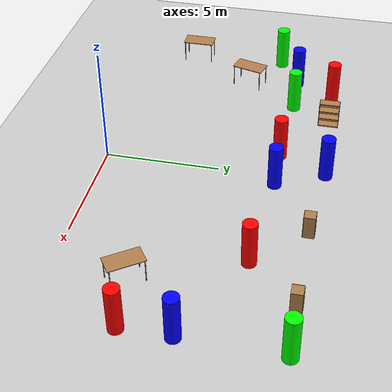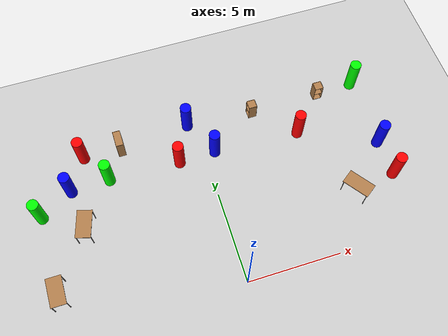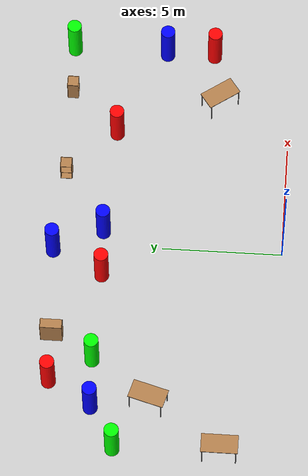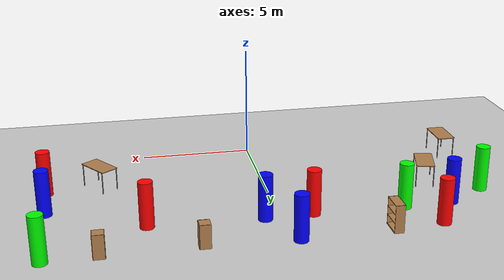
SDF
<sdf version="1.6">
 <world name="default">
  <model name="ground_plane">
   <static>1</static>
   <link name="link">
    <collision name="collision">
     <geometry><plane><normal>0 0 1</normal><size>100 100</size></plane></geometry>
     <surface>
      <contact><collide_bitmask>65535</collide_bitmask></contact>
      <friction><ode><mu>100</mu><mu2>50</mu2></ode></friction>
     </surface>
    </collision>
    <visual name="visual">
     <cast_shadows>0</cast_shadows>
     <geometry><plane><normal>0 0 1</normal><size>100 100</size></plane></geometry>
     <material>
      <script><uri>file://media/materials/scripts/gazebo.material</uri><name>Gazebo/Grey</name></script>
     </material>
    </visual>
   </link>
  </model>
  <model name="bookshelf4">
   <static>1</static>
   <link name="link">
    <inertial><mass>1</mass></inertial>
    <collision name="back">
     <pose>0 0.005 0.6 0 -0 0</pose>
     <geometry><box><size>0.9 0.01 1.2</size></box></geometry>
    </collision>
    <visual name="visual1">
     <pose>0 0.005 0.6 0 -0 0</pose>
     <geometry><box><size>0.9 0.01 1.2</size></box></geometry>
     <material>
      <script><uri>file://media/materials/scripts/gazebo.material</uri><name>Gazebo/Wood</name></script>
     </material>
    </visual>
    <collision name="left_side">
     <pose>0.45 -0.195 0.6 0 -0 0</pose>
     <geometry><box><size>0.02 0.4 1.2</size></box></geometry>
    </collision>
    <visual name="visual2">
     <pose>0.45 -0.195 0.6 0 -0 0</pose>
     <geometry><box><size>0.02 0.4 1.2</size></box></geometry>
     <material>
      <script><uri>file://media/materials/scripts/gazebo.material</uri><name>Gazebo/Wood</name></script>
     </material>
    </visual>
    <collision name="right_side">
     <pose>-0.45 -0.195 0.6 0 -0 0</pose>
     <geometry><box><size>0.02 0.4 1.2</size></box></geometry>
    </collision>
    <visual name="visual3">
     <pose>-0.45 -0.195 0.6 0 -0 0</pose>
     <geometry><box><size>0.02 0.4 1.2</size></box></geometry>
     <material>
      <script><uri>file://media/materials/scripts/gazebo.material</uri><name>Gazebo/Wood</name></script>
     </material>
    </visual>
    <collision name="bottom">
     <pose>0 -0.195 0.03 0 -0 0</pose>
     <geometry><box><size>0.88 0.4 0.06</size></box></geometry>
    </collision>
    <visual name="visual4">
     <pose>0 -0.195 0.03 0 -0 0</pose>
     <geometry><box><size>0.88 0.4 0.06</size></box></geometry>
     <material>
      <script><uri>file://media/materials/scripts/gazebo.material</uri><name>Gazebo/Wood</name></script>
     </material>
    </visual>
    <collision name="top">
     <pose>0 -0.195 1.19 0 -0 0</pose>
     <geometry><box><size>0.88 0.4 0.02</size></box></geometry>
    </collision>
    <visual name="visual5">
     <pose>0 -0.195 1.19 0 -0 0</pose>
     <geometry><box><size>0.88 0.4 0.02</size></box></geometry>
     <material>
      <script><uri>file://media/materials/scripts/gazebo.material</uri><name>Gazebo/Wood</name></script>
     </material>
    </visual>
    <collision name="low_shelf">
     <pose>0 -0.195 0.43 0 -0 0</pose>
     <geometry><box><size>0.88 0.4 0.02</size></box></geometry>
    </collision>
    <visual name="visual6">
     <pose>0 -0.195 0.43 0 -0 0</pose>
     <geometry><box><size>0.88 0.4 0.02</size></box></geometry>
     <material>
      <script><uri>file://media/materials/scripts/gazebo.material</uri><name>Gazebo/Wood</name></script>
     </material>
    </visual>
    <collision name="high_shelf">
     <pose>0 -0.195 0.8 0 -0 0</pose>
     <geometry><box><size>0.88 0.4 0.02</size></box></geometry>
    </collision>
    <visual name="visual7">
     <pose>0 -0.195 0.8 0 -0 0</pose>
     <geometry><box><size>0.88 0.4 0.02</size></box></geometry>
     <material>
      <script><uri>file://media/materials/scripts/gazebo.material</uri><name>Gazebo/Wood</name></script>
     </material>
    </visual>
   </link>
   <pose>-4.51158 9.29121 0 0 -0 1.5708</pose>
  </model>
  <model name="cabinet0">
   <static>1</static>
   <link name="cabinet_bottom_plate">
    <inertial>
     <pose>0 0 -1 0 -0 0</pose>
     <inertia><ixx>2.05</ixx><ixy>0</ixy><ixz>0</ixz><iyy>2.05</iyy><iyz>0</iyz><izz>2.05</izz></inertia>
     <mass>25</mass>
    </inertial>
    <collision name="cabinet_bottom_plate_geom">
     <pose>0 0 0.01 0 -0 0</pose>
     <geometry><box><size>0.45 0.45 0.02</size></box></geometry>
    </collision>
    <visual name="cabinet_bottom_plate_geom_visual">
     <pose>0 0 0.01 0 -0 0</pose>
     <geometry><box><size>0.45 0.45 0.02</size></box></geometry>
     <material>
      <script><uri>file://media/materials/scripts/gazebo.material</uri><name>Gazebo/Wood</name></script>
     </material>
    </visual>
    <collision name="cabinet_bottom_plate_geom_cabinet_back_plate">
     <pose>0.235 0 0.51 0 -0 0</pose>
     <geometry><box><size>0.02 0.45 1.02</size></box></geometry>
    </collision>
    <visual name="cabinet_bottom_plate_geom_cabinet_back_plate_visual">
     <pose>0.235 0 0.51 0 -0 0</pose>
     <geometry><box><size>0.02 0.45 1.02</size></box></geometry>
     <material>
      <script><uri>file://media/materials/scripts/gazebo.material</uri><name>Gazebo/Wood</name></script>
     </material>
    </visual>
    <collision name="cabinet_bottom_plate_geom_cabinet_left_plate">
     <pose>0 0.235 0.51 0 -0 0</pose>
     <geometry><box><size>0.45 0.02 1.02</size></box></geometry>
    </collision>
    <visual name="cabinet_bottom_plate_geom_cabinet_left_plate_visual">
     <pose>0 0.235 0.51 0 -0 0</pose>
     <geometry><box><size>0.45 0.02 1.02</size></box></geometry>
     <material>
      <script><uri>file://media/materials/scripts/gazebo.material</uri><name>Gazebo/Wood</name></script>
     </material>
    </visual>
    <collision name="cabinet_bottom_plate_geom_cabinet_middle_plate">
     <pose>0 0 0.51 0 -0 0</pose>
     <geometry><box><size>0.45 0.45 0.02</size></box></geometry>
    </collision>
    <visual name="cabinet_bottom_plate_geom_cabinet_middle_plate_visual">
     <pose>0 0 0.51 0 -0 0</pose>
     <geometry><box><size>0.45 0.45 0.02</size></box></geometry>
     <material>
      <script><uri>file://media/materials/scripts/gazebo.material</uri><name>Gazebo/Wood</name></script>
     </material>
    </visual>
    <collision name="cabinet_bottom_plate_geom_cabinet_right_plate">
     <pose>0 -0.235 0.51 0 -0 0</pose>
     <geometry><box><size>0.45 0.02 1.02</size></box></geometry>
    </collision>
    <visual name="cabinet_bottom_plate_geom_cabinet_right_plate_visual">
     <pose>0 -0.235 0.51 0 -0 0</pose>
     <geometry><box><size>0.45 0.02 1.02</size></box></geometry>
     <material>
      <script><uri>file://media/materials/scripts/gazebo.material</uri><name>Gazebo/Wood</name></script>
     </material>
    </visual>
    <collision name="cabinet_bottom_plate_geom_cabinet_top_plate">
     <pose>0 0 1.01 0 -0 0</pose>
     <geometry><box><size>0.45 0.45 0.02</size></box></geometry>
    </collision>
    <visual name="cabinet_bottom_plate_geom_cabinet_top_plate_visual">
     <pose>0 0 1.01 0 -0 0</pose>
     <geometry><box><size>0.45 0.45 0.02</size></box></geometry>
     <material>
      <script><uri>file://media/materials/scripts/gazebo.material</uri><name>Gazebo/Wood</name></script>
     </material>
    </visual>
   </link>
   <pose>3.30482 9.28063 0 0 -0 0</pose>
  </model>
  <model name="cabinet4">
   <static>1</static>
   <link name="cabinet_bottom_plate">
    <inertial>
     <pose>0 0 -1 0 -0 0</pose>
     <inertia><ixx>2.05</ixx><ixy>0</ixy><ixz>0</ixz><iyy>2.05</iyy><iyz>0</iyz><izz>2.05</izz></inertia>
     <mass>25</mass>
    </inertial>
    <collision name="cabinet_bottom_plate_geom">
     <pose>0 0 0.01 0 -0 0</pose>
     <geometry><box><size>0.45 0.45 0.02</size></box></geometry>
    </collision>
    <visual name="cabinet_bottom_plate_geom_visual">
     <pose>0 0 0.01 0 -0 0</pose>
     <geometry><box><size>0.45 0.45 0.02</size></box></geometry>
     <material>
      <script><uri>file://media/materials/scripts/gazebo.material</uri><name>Gazebo/Wood</name></script>
     </material>
    </visual>
    <collision name="cabinet_bottom_plate_geom_cabinet_back_plate">
     <pose>0.235 0 0.51 0 -0 0</pose>
     <geometry><box><size>0.02 0.45 1.02</size></box></geometry>
    </collision>
    <visual name="cabinet_bottom_plate_geom_cabinet_back_plate_visual">
     <pose>0.235 0 0.51 0 -0 0</pose>
     <geometry><box><size>0.02 0.45 1.02</size></box></geometry>
     <material>
      <script><uri>file://media/materials/scripts/gazebo.material</uri><name>Gazebo/Wood</name></script>
     </material>
    </visual>
    <collision name="cabinet_bottom_plate_geom_cabinet_left_plate">
     <pose>0 0.235 0.51 0 -0 0</pose>
     <geometry><box><size>0.45 0.02 1.02</size></box></geometry>
    </collision>
    <visual name="cabinet_bottom_plate_geom_cabinet_left_plate_visual">
     <pose>0 0.235 0.51 0 -0 0</pose>
     <geometry><box><size>0.45 0.02 1.02</size></box></geometry>
     <material>
      <script><uri>file://media/materials/scripts/gazebo.material</uri><name>Gazebo/Wood</name></script>
     </material>
    </visual>
    <collision name="cabinet_bottom_plate_geom_cabinet_middle_plate">
     <pose>0 0 0.51 0 -0 0</pose>
     <geometry><box><size>0.45 0.45 0.02</size></box></geometry>
    </collision>
    <visual name="cabinet_bottom_plate_geom_cabinet_middle_plate_visual">
     <pose>0 0 0.51 0 -0 0</pose>
     <geometry><box><size>0.45 0.45 0.02</size></box></geometry>
     <material>
      <script><uri>file://media/materials/scripts/gazebo.material</uri><name>Gazebo/Wood</name></script>
     </material>
    </visual>
    <collision name="cabinet_bottom_plate_geom_cabinet_right_plate">
     <pose>0 -0.235 0.51 0 -0 0</pose>
     <geometry><box><size>0.45 0.02 1.02</size></box></geometry>
    </collision>
    <visual name="cabinet_bottom_plate_geom_cabinet_right_plate_visual">
     <pose>0 -0.235 0.51 0 -0 0</pose>
     <geometry><box><size>0.45 0.02 1.02</size></box></geometry>
     <material>
      <script><uri>file://media/materials/scripts/gazebo.material</uri><name>Gazebo/Wood</name></script>
     </material>
    </visual>
    <collision name="cabinet_bottom_plate_geom_cabinet_top_plate">
     <pose>0 0 1.01 0 -0 0</pose>
     <geometry><box><size>0.45 0.45 0.02</size></box></geometry>
    </collision>
    <visual name="cabinet_bottom_plate_geom_cabinet_top_plate_visual">
     <pose>0 0 1.01 0 -0 0</pose>
     <geometry><box><size>0.45 0.45 0.02</size></box></geometry>
     <material>
      <script><uri>file://media/materials/scripts/gazebo.material</uri><name>Gazebo/Wood</name></script>
     </material>
    </visual>
   </link>
   <pose>7.28077 9.29854 0 0 -0 1.5708</pose>
  </model>
  <model name="table1">
   <static>1</static>
   <link name="link">
    <collision name="surface">
     <pose>0 0 1 0 -0 0</pose>
     <geometry><box><size>1.5 0.8 0.03</size></box></geometry>
     <surface><friction><ode><mu>0.6</mu><mu2>0.6</mu2></ode></friction></surface>
    </collision>
    <visual name="visual1">
     <pose>0 0 1 0 -0 0</pose>
     <geometry><box><size>1.5 0.8 0.03</size></box></geometry>
     <material>
      <script><uri>file://media/materials/scripts/gazebo.material</uri><name>Gazebo/Wood</name></script>
     </material>
    </visual>
    <collision name="front_left_leg">
     <pose>0.68 0.38 0.5 0 -0 0</pose>
     <geometry><cylinder><radius>0.02</radius><length>1</length></cylinder></geometry>
    </collision>
    <visual name="front_left_leg">
     <pose>0.68 0.38 0.5 0 -0 0</pose>
     <geometry><cylinder><radius>0.02</radius><length>1</length></cylinder></geometry>
     <material>
      <script><uri>file://media/materials/scripts/gazebo.material</uri><name>Gazebo/Grey</name></script>
     </material>
    </visual>
    <collision name="front_right_leg">
     <pose>0.68 -0.38 0.5 0 -0 0</pose>
     <geometry><cylinder><radius>0.02</radius><length>1</length></cylinder></geometry>
    </collision>
    <visual name="front_right_leg">
     <pose>0.68 -0.38 0.5 0 -0 0</pose>
     <geometry><cylinder><radius>0.02</radius><length>1</length></cylinder></geometry>
     <material>
      <script><uri>file://media/materials/scripts/gazebo.material</uri><name>Gazebo/Grey</name></script>
     </material>
    </visual>
    <collision name="back_right_leg">
     <pose>-0.68 -0.38 0.5 0 -0 0</pose>
     <geometry><cylinder><radius>0.02</radius><length>1</length></cylinder></geometry>
    </collision>
    <visual name="back_right_leg">
     <pose>-0.68 -0.38 0.5 0 -0 0</pose>
     <geometry><cylinder><radius>0.02</radius><length>1</length></cylinder></geometry>
     <material>
      <script><uri>file://media/materials/scripts/gazebo.material</uri><name>Gazebo/Grey</name></script>
     </material>
    </visual>
    <collision name="back_left_leg">
     <pose>-0.68 0.38 0.5 0 -0 0</pose>
     <geometry><cylinder><radius>0.02</radius><length>1</length></cylinder></geometry>
    </collision>
    <visual name="back_left_leg">
     <pose>-0.68 0.38 0.5 0 -0 0</pose>
     <geometry><cylinder><radius>0.02</radius><length>1</length></cylinder></geometry>
     <material>
      <script><uri>file://media/materials/scripts/gazebo.material</uri><name>Gazebo/Grey</name></script>
     </material>
    </visual>
   </link>
   <pose>-9.1077 2.12163 0 0 0 -1.5708</pose>
  </model>
  <model name="table2">
   <static>1</static>
   <link name="link">
    <collision name="surface">
     <pose>0 0 1 0 -0 0</pose>
     <geometry><box><size>1.5 0.8 0.03</size></box></geometry>
     <surface><friction><ode><mu>0.6</mu><mu2>0.6</mu2></ode></friction></surface>
    </collision>
    <visual name="visual1">
     <pose>0 0 1 0 -0 0</pose>
     <geometry><box><size>1.5 0.8 0.03</size></box></geometry>
     <material>
      <script><uri>file://media/materials/scripts/gazebo.material</uri><name>Gazebo/Wood</name></script>
     </material>
    </visual>
    <collision name="front_left_leg">
     <pose>0.68 0.38 0.5 0 -0 0</pose>
     <geometry><cylinder><radius>0.02</radius><length>1</length></cylinder></geometry>
    </collision>
    <visual name="front_left_leg">
     <pose>0.68 0.38 0.5 0 -0 0</pose>
     <geometry><cylinder><radius>0.02</radius><length>1</length></cylinder></geometry>
     <material>
      <script><uri>file://media/materials/scripts/gazebo.material</uri><name>Gazebo/Grey</name></script>
     </material>
    </visual>
    <collision name="front_right_leg">
     <pose>0.68 -0.38 0.5 0 -0 0</pose>
     <geometry><cylinder><radius>0.02</radius><length>1</length></cylinder></geometry>
    </collision>
    <visual name="front_right_leg">
     <pose>0.68 -0.38 0.5 0 -0 0</pose>
     <geometry><cylinder><radius>0.02</radius><length>1</length></cylinder></geometry>
     <material>
      <script><uri>file://media/materials/scripts/gazebo.material</uri><name>Gazebo/Grey</name></script>
     </material>
    </visual>
    <collision name="back_right_leg">
     <pose>-0.68 -0.38 0.5 0 -0 0</pose>
     <geometry><cylinder><radius>0.02</radius><length>1</length></cylinder></geometry>
    </collision>
    <visual name="back_right_leg">
     <pose>-0.68 -0.38 0.5 0 -0 0</pose>
     <geometry><cylinder><radius>0.02</radius><length>1</length></cylinder></geometry>
     <material>
      <script><uri>file://media/materials/scripts/gazebo.material</uri><name>Gazebo/Grey</name></script>
     </material>
    </visual>
    <collision name="back_left_leg">
     <pose>-0.68 0.38 0.5 0 -0 0</pose>
     <geometry><cylinder><radius>0.02</radius><length>1</length></cylinder></geometry>
    </collision>
    <visual name="back_left_leg">
     <pose>-0.68 0.38 0.5 0 -0 0</pose>
     <geometry><cylinder><radius>0.02</radius><length>1</length></cylinder></geometry>
     <material>
      <script><uri>file://media/materials/scripts/gazebo.material</uri><name>Gazebo/Grey</name></script>
     </material>
    </visual>
   </link>
   <pose>7.0955 2.98202 0 0 -0 2.19088</pose>
  </model>
  <model name="red0">
   <link name="link">
    <pose>-0.202221 0.506091 0 0 -0 0</pose>
    <inertial>
     <mass>1</mass>
     <inertia><ixx>0.145833</ixx><ixy>0</ixy><ixz>0</ixz><iyy>0.145833</iyy><iyz>0</iyz><izz>0.125</izz></inertia>
    </inertial>
    <visual name="visual">
     <geometry><cylinder><radius>0.3</radius><length>2</length></cylinder></geometry>
     <material>
      <script><name>Gazebo/Grey</name><uri>file://media/materials/scripts/gazebo.material</uri></script>
      <ambient>1 0 0 1</ambient>
      <diffuse>0.7 0.7 0.7 1</diffuse>
      <specular>0.01 0.01 0.01 1</specular>
      <emissive>0 0 0 1</emissive>
      <shader type="vertex"><normal_map>__default__</normal_map></shader>
     </material>
    </visual>
    <collision name="collision">
     <geometry><cylinder><radius>0.3</radius><length>2</length></cylinder></geometry>
     <surface>
      <friction>
       <ode><mu>1</mu><mu2>1</mu2><fdir1>0 0 0</fdir1><slip1>0</slip1><slip2>0</slip2></ode>
       <torsional>
        <coefficient>1</coefficient>
        <patch_radius>0</patch_radius>
        <surface_radius>0</surface_radius>
        <use_patch_radius>1</use_patch_radius>
        <ode><slip>0</slip></ode>
       </torsional>
      </friction>
      <bounce><restitution_coefficient>0</restitution_coefficient><threshold>1e+06</threshold></bounce>
      <contact>
       <collide_without_contact>0</collide_without_contact>
       <collide_without_contact_bitmask>1</collide_without_contact_bitmask>
       <collide_bitmask>1</collide_bitmask>
       <ode>
        <soft_cfm>0</soft_cfm>
        <soft_erp>0.2</soft_erp>
        <kp>1e+13</kp>
        <kd>1</kd>
        <max_vel>0.01</max_vel>
        <min_depth>0</min_depth>
       </ode>
       <bullet>
        <split_impulse>1</split_impulse>
        <split_impulse_penetration_threshold>-0.01</split_impulse_penetration_threshold>
        <soft_cfm>0</soft_cfm>
        <soft_erp>0.2</soft_erp>
        <kp>1e+13</kp>
        <kd>1</kd>
       </bullet>
      </contact>
     </surface>
    </collision>
   </link>
   <static>0</static>
   <pose>-6.19458 8.75099 0.999992 0 -0 9.3e-05</pose>
  </model>
  <model name="red5">
   <link name="link">
    <pose>-0.202221 0.506091 0 0 -0 0</pose>
    <inertial>
     <mass>1</mass>
     <inertia><ixx>0.145833</ixx><ixy>0</ixy><ixz>0</ixz><iyy>0.145833</iyy><iyz>0</iyz><izz>0.125</izz></inertia>
    </inertial>
    <visual name="visual">
     <geometry><cylinder><radius>0.3</radius><length>2</length></cylinder></geometry>
     <material>
      <script><name>Gazebo/Grey</name><uri>file://media/materials/scripts/gazebo.material</uri></script>
      <ambient>1 0 0 1</ambient>
      <diffuse>0.7 0.7 0.7 1</diffuse>
      <specular>0.01 0.01 0.01 1</specular>
      <emissive>0 0 0 1</emissive>
      <shader type="vertex"><normal_map>__default__</normal_map></shader>
     </material>
    </visual>
    <collision name="collision">
     <geometry><cylinder><radius>0.3</radius><length>2</length></cylinder></geometry>
     <surface>
      <friction>
       <ode><mu>1</mu><mu2>1</mu2><fdir1>0 0 0</fdir1><slip1>0</slip1><slip2>0</slip2></ode>
       <torsional>
        <coefficient>1</coefficient>
        <patch_radius>0</patch_radius>
        <surface_radius>0</surface_radius>
        <use_patch_radius>1</use_patch_radius>
        <ode><slip>0</slip></ode>
       </torsional>
      </friction>
      <bounce><restitution_coefficient>0</restitution_coefficient><threshold>1e+06</threshold></bounce>
      <contact>
       <collide_without_contact>0</collide_without_contact>
       <collide_without_contact_bitmask>1</collide_without_contact_bitmask>
       <collide_bitmask>1</collide_bitmask>
       <ode>
        <soft_cfm>0</soft_cfm>
        <soft_erp>0.2</soft_erp>
        <kp>1e+13</kp>
        <kd>1</kd>
        <max_vel>0.01</max_vel>
        <min_depth>0</min_depth>
       </ode>
       <bullet>
        <split_impulse>1</split_impulse>
        <split_impulse_penetration_threshold>-0.01</split_impulse_penetration_threshold>
        <soft_cfm>0</soft_cfm>
        <soft_erp>0.2</soft_erp>
        <kp>1e+13</kp>
        <kd>1</kd>
       </bullet>
      </contact>
     </surface>
    </collision>
   </link>
   <static>0</static>
   <pose>9.62587 2.83361 0.999993 0 -0 5.3e-05</pose>
  </model>
  <model name="green4">
   <link name="link">
    <inertial>
     <mass>1</mass>
     <inertia><ixx>0.145833</ixx><ixy>0</ixy><ixz>0</ixz><iyy>0.145833</iyy><iyz>0</iyz><izz>0.125</izz></inertia>
    </inertial>
    <visual name="visual">
     <geometry><cylinder><radius>0.3</radius><length>2</length></cylinder></geometry>
     <material>
      <script><name>Gazebo/Grey</name><uri>file://media/materials/scripts/gazebo.material</uri></script>
      <ambient>0 1 0 1</ambient>
      <diffuse>0.7 0.7 0.7 1</diffuse>
      <specular>0.01 0.01 0.01 1</specular>
      <emissive>0 0 0 1</emissive>
      <shader type="vertex"><normal_map>__default__</normal_map></shader>
     </material>
    </visual>
    <collision name="collision">
     <geometry><cylinder><radius>0.3</radius><length>2</length></cylinder></geometry>
     <surface>
      <friction>
       <ode><mu>1</mu><mu2>1</mu2><fdir1>0 0 0</fdir1><slip1>0</slip1><slip2>0</slip2></ode>
       <torsional>
        <coefficient>1</coefficient>
        <patch_radius>0</patch_radius>
        <surface_radius>0</surface_radius>
        <use_patch_radius>1</use_patch_radius>
        <ode><slip>0</slip></ode>
       </torsional>
      </friction>
      <bounce><restitution_coefficient>0</restitution_coefficient><threshold>1e+06</threshold></bounce>
      <contact>
       <collide_without_contact>0</collide_without_contact>
       <collide_without_contact_bitmask>1</collide_without_contact_bitmask>
       <collide_bitmask>1</collide_bitmask>
       <ode>
        <soft_cfm>0</soft_cfm>
        <soft_erp>0.2</soft_erp>
        <kp>1e+13</kp>
        <kd>1</kd>
        <max_vel>0.01</max_vel>
        <min_depth>0</min_depth>
       </ode>
       <bullet>
        <split_impulse>1</split_impulse>
        <split_impulse_penetration_threshold>-0.01</split_impulse_penetration_threshold>
        <soft_cfm>0</soft_cfm>
        <soft_erp>0.2</soft_erp>
        <kp>1e+13</kp>
        <kd>1</kd>
       </bullet>
      </contact>
     </surface>
    </collision>
   </link>
   <static>0</static>
   <pose>-9.21307 6.44775 0.999999 0 -0 9.8e-05</pose>
  </model>
  <model name="green6">
   <link name="link">
    <inertial>
     <mass>1</mass>
     <inertia><ixx>0.145833</ixx><ixy>0</ixy><ixz>0</ixz><iyy>0.145833</iyy><iyz>0</iyz><izz>0.125</izz></inertia>
    </inertial>
    <visual name="visual">
     <geometry><cylinder><radius>0.3</radius><length>2</length></cylinder></geometry>
     <material>
      <script><name>Gazebo/Grey</name><uri>file://media/materials/scripts/gazebo.material</uri></script>
      <ambient>0 1 0 1</ambient>
      <diffuse>0.7 0.7 0.7 1</diffuse>
      <specular>0.01 0.01 0.01 1</specular>
      <emissive>0 0 0 1</emissive>
      <shader type="vertex"><normal_map>__default__</normal_map></shader>
     </material>
    </visual>
    <collision name="collision">
     <geometry><cylinder><radius>0.3</radius><length>2</length></cylinder></geometry>
     <surface>
      <friction>
       <ode><mu>1</mu><mu2>1</mu2><fdir1>0 0 0</fdir1><slip1>0</slip1><slip2>0</slip2></ode>
       <torsional>
        <coefficient>1</coefficient>
        <patch_radius>0</patch_radius>
        <surface_radius>0</surface_radius>
        <use_patch_radius>1</use_patch_radius>
        <ode><slip>0</slip></ode>
       </torsional>
      </friction>
      <bounce><restitution_coefficient>0</restitution_coefficient><threshold>1e+06</threshold></bounce>
      <contact>
       <collide_without_contact>0</collide_without_contact>
       <collide_without_contact_bitmask>1</collide_without_contact_bitmask>
       <collide_bitmask>1</collide_bitmask>
       <ode>
        <soft_cfm>0</soft_cfm>
        <soft_erp>0.2</soft_erp>
        <kp>1e+13</kp>
        <kd>1</kd>
        <max_vel>0.01</max_vel>
        <min_depth>0</min_depth>
       </ode>
       <bullet>
        <split_impulse>1</split_impulse>
        <split_impulse_penetration_threshold>-0.01</split_impulse_penetration_threshold>
        <soft_cfm>0</soft_cfm>
        <soft_erp>0.2</soft_erp>
        <kp>1e+13</kp>
        <kd>1</kd>
       </bullet>
      </contact>
     </surface>
    </collision>
   </link>
   <static>0</static>
   <pose>9.42652 9.38493 0.999993 0 -0 1.57251</pose>
  </model>
  <model name="blue1">
   <link name="link">
    <inertial>
     <mass>1</mass>
     <inertia><ixx>0.145833</ixx><ixy>0</ixy><ixz>0</ixz><iyy>0.145833</iyy><iyz>0</iyz><izz>0.125</izz></inertia>
    </inertial>
    <visual name="visual">
     <geometry><cylinder><radius>0.3</radius><length>2</length></cylinder></geometry>
     <material>
      <script><name>Gazebo/Grey</name><uri>file://media/materials/scripts/gazebo.material</uri></script>
      <ambient>0 0 1 1</ambient>
      <diffuse>0.7 0.7 0.7 1</diffuse>
      <specular>0.01 0.01 0.01 1</specular>
      <emissive>0 0 0 1</emissive>
      <shader type="vertex"><normal_map>__default__</normal_map></shader>
     </material>
    </visual>
    <collision name="collision">
     <geometry><cylinder><radius>0.2</radius><length>2</length></cylinder></geometry>
     <surface>
      <friction>
       <ode><mu>1</mu><mu2>1</mu2><fdir1>0 0 0</fdir1><slip1>0</slip1><slip2>0</slip2></ode>
       <torsional>
        <coefficient>1</coefficient>
        <patch_radius>0</patch_radius>
        <surface_radius>0</surface_radius>
        <use_patch_radius>1</use_patch_radius>
        <ode><slip>0</slip></ode>
       </torsional>
      </friction>
      <bounce><restitution_coefficient>0</restitution_coefficient><threshold>1e+06</threshold></bounce>
      <contact>
       <collide_without_contact>0</collide_without_contact>
       <collide_without_contact_bitmask>1</collide_without_contact_bitmask>
       <collide_bitmask>1</collide_bitmask>
       <ode>
        <soft_cfm>0</soft_cfm>
        <soft_erp>0.2</soft_erp>
        <kp>1e+13</kp>
        <kd>1</kd>
        <max_vel>0.01</max_vel>
        <min_depth>0</min_depth>
       </ode>
       <bullet>
        <split_impulse>1</split_impulse>
        <split_impulse_penetration_threshold>-0.01</split_impulse_penetration_threshold>
        <soft_cfm>0</soft_cfm>
        <soft_erp>0.2</soft_erp>
        <kp>1e+13</kp>
        <kd>1</kd>
       </bullet>
      </contact>
     </surface>
    </collision>
   </link>
   <static>0</static>
   <pose>9.39957 5.36753 0.999996 0 0 -0.007206</pose>
  </model>
  <model name="blue5">
   <link name="link">
    <inertial>
     <mass>1</mass>
     <inertia><ixx>0.145833</ixx><ixy>0</ixy><ixz>0</ixz><iyy>0.145833</iyy><iyz>0</iyz><izz>0.125</izz></inertia>
    </inertial>
    <visual name="visual">
     <geometry><cylinder><radius>0.3</radius><length>2</length></cylinder></geometry>
     <material>
      <script><name>Gazebo/Grey</name><uri>file://media/materials/scripts/gazebo.material</uri></script>
      <ambient>0 0 1 1</ambient>
      <diffuse>0.7 0.7 0.7 1</diffuse>
      <specular>0.01 0.01 0.01 1</specular>
      <emissive>0 0 0 1</emissive>
      <shader type="vertex"><normal_map>__default__</normal_map></shader>
     </material>
    </visual>
    <collision name="collision">
     <geometry><cylinder><radius>0.2</radius><length>2</length></cylinder></geometry>
     <surface>
      <friction>
       <ode><mu>1</mu><mu2>1</mu2><fdir1>0 0 0</fdir1><slip1>0</slip1><slip2>0</slip2></ode>
       <torsional>
        <coefficient>1</coefficient>
        <patch_radius>0</patch_radius>
        <surface_radius>0</surface_radius>
        <use_patch_radius>1</use_patch_radius>
        <ode><slip>0</slip></ode>
       </torsional>
      </friction>
      <bounce><restitution_coefficient>0</restitution_coefficient><threshold>1e+06</threshold></bounce>
      <contact>
       <collide_without_contact>0</collide_without_contact>
       <collide_without_contact_bitmask>1</collide_without_contact_bitmask>
       <collide_bitmask>1</collide_bitmask>
       <ode>
        <soft_cfm>0</soft_cfm>
        <soft_erp>0.2</soft_erp>
        <kp>1e+13</kp>
        <kd>1</kd>
        <max_vel>0.01</max_vel>
        <min_depth>0</min_depth>
       </ode>
       <bullet>
        <split_impulse>1</split_impulse>
        <split_impulse_penetration_threshold>-0.01</split_impulse_penetration_threshold>
        <soft_cfm>0</soft_cfm>
        <soft_erp>0.2</soft_erp>
        <kp>1e+13</kp>
        <kd>1</kd>
       </bullet>
      </contact>
     </surface>
    </collision>
   </link>
   <static>0</static>
   <pose>-0.40548 9.5525 0.999996 0 0 -0.005155</pose>
  </model>
  <model name="red3_clone">
   <link name="link">
    <pose>-0.202221 0.506091 0 0 -0 0</pose>
    <inertial>
     <mass>1</mass>
     <inertia><ixx>0.145833</ixx><ixy>0</ixy><ixz>0</ixz><iyy>0.145833</iyy><iyz>0</iyz><izz>0.125</izz></inertia>
    </inertial>
    <visual name="visual">
     <geometry><cylinder><radius>0.3</radius><length>2</length></cylinder></geometry>
     <material>
      <script><name>Gazebo/Grey</name><uri>file://media/materials/scripts/gazebo.material</uri></script>
      <ambient>1 0 0 1</ambient>
      <diffuse>0.7 0.7 0.7 1</diffuse>
      <specular>0.01 0.01 0.01 1</specular>
      <emissive>0 0 0 1</emissive>
      <shader type="vertex"><normal_map>__default__</normal_map></shader>
     </material>
    </visual>
    <collision name="collision">
     <geometry><cylinder><radius>0.3</radius><length>2</length></cylinder></geometry>
     <surface>
      <friction>
       <ode><mu>1</mu><mu2>1</mu2><fdir1>0 0 0</fdir1><slip1>0</slip1><slip2>0</slip2></ode>
       <torsional>
        <coefficient>1</coefficient>
        <patch_radius>0</patch_radius>
        <surface_radius>0</surface_radius>
        <use_patch_radius>1</use_patch_radius>
        <ode><slip>0</slip></ode>
       </torsional>
      </friction>
      <bounce><restitution_coefficient>0</restitution_coefficient><threshold>1e+06</threshold></bounce>
      <contact>
       <collide_without_contact>0</collide_without_contact>
       <collide_without_contact_bitmask>1</collide_without_contact_bitmask>
       <collide_bitmask>1</collide_bitmask>
       <ode>
        <soft_cfm>0</soft_cfm>
        <soft_erp>0.2</soft_erp>
        <kp>1e+13</kp>
        <kd>1</kd>
        <max_vel>0.01</max_vel>
        <min_depth>0</min_depth>
       </ode>
       <bullet>
        <split_impulse>1</split_impulse>
        <split_impulse_penetration_threshold>-0.01</split_impulse_penetration_threshold>
        <soft_cfm>0</soft_cfm>
        <soft_erp>0.2</soft_erp>
        <kp>1e+13</kp>
        <kd>1</kd>
       </bullet>
      </contact>
     </surface>
    </collision>
   </link>
   <static>0</static>
   <pose>5.55978 6.76682 0.999997 0 -0 4.6e-05</pose>
  </model>
  <model name="blue3_clone">
   <link name="link">
    <inertial>
     <mass>1</mass>
     <inertia><ixx>0.145833</ixx><ixy>0</ixy><ixz>0</ixz><iyy>0.145833</iyy><iyz>0</iyz><izz>0.125</izz></inertia>
    </inertial>
    <visual name="visual">
     <geometry><cylinder><radius>0.3</radius><length>2</length></cylinder></geometry>
     <material>
      <script><name>Gazebo/Grey</name><uri>file://media/materials/scripts/gazebo.material</uri></script>
      <ambient>0 0 1 1</ambient>
      <diffuse>0.7 0.7 0.7 1</diffuse>
      <specular>0.01 0.01 0.01 1</specular>
      <emissive>0 0 0 1</emissive>
      <shader type="vertex"><normal_map>__default__</normal_map></shader>
     </material>
    </visual>
    <collision name="collision">
     <geometry><cylinder><radius>0.2</radius><length>2</length></cylinder></geometry>
     <surface>
      <friction>
       <ode><mu>1</mu><mu2>1</mu2><fdir1>0 0 0</fdir1><slip1>0</slip1><slip2>0</slip2></ode>
       <torsional>
        <coefficient>1</coefficient>
        <patch_radius>0</patch_radius>
        <surface_radius>0</surface_radius>
        <use_patch_radius>1</use_patch_radius>
        <ode><slip>0</slip></ode>
       </torsional>
      </friction>
      <bounce><restitution_coefficient>0</restitution_coefficient><threshold>1e+06</threshold></bounce>
      <contact>
       <collide_without_contact>0</collide_without_contact>
       <collide_without_contact_bitmask>1</collide_without_contact_bitmask>
       <collide_bitmask>1</collide_bitmask>
       <ode>
        <soft_cfm>0</soft_cfm>
        <soft_erp>0.2</soft_erp>
        <kp>1e+13</kp>
        <kd>1</kd>
        <max_vel>0.01</max_vel>
        <min_depth>0</min_depth>
       </ode>
       <bullet>
        <split_impulse>1</split_impulse>
        <split_impulse_penetration_threshold>-0.01</split_impulse_penetration_threshold>
        <soft_cfm>0</soft_cfm>
        <soft_erp>0.2</soft_erp>
        <kp>1e+13</kp>
        <kd>1</kd>
       </bullet>
      </contact>
     </surface>
    </collision>
   </link>
   <static>0</static>
   <pose>0.598068 7.51477 1 1e-06 -1e-06 -0.009975</pose>
  </model>
  <model name="red3_clone_0">
   <link name="link">
    <pose>-0.202221 0.506091 0 0 -0 0</pose>
    <inertial>
     <mass>1</mass>
     <inertia><ixx>0.145833</ixx><ixy>0</ixy><ixz>0</ixz><iyy>0.145833</iyy><iyz>0</iyz><izz>0.125</izz></inertia>
    </inertial>
    <visual name="visual">
     <geometry><cylinder><radius>0.3</radius><length>2</length></cylinder></geometry>
     <material>
      <script><name>Gazebo/Grey</name><uri>file://media/materials/scripts/gazebo.material</uri></script>
      <ambient>1 0 0 1</ambient>
      <diffuse>0.7 0.7 0.7 1</diffuse>
      <specular>0.01 0.01 0.01 1</specular>
      <emissive>0 0 0 1</emissive>
      <shader type="vertex"><normal_map>__default__</normal_map></shader>
     </material>
    </visual>
    <collision name="collision">
     <geometry><cylinder><radius>0.3</radius><length>2</length></cylinder></geometry>
     <surface>
      <friction>
       <ode><mu>1</mu><mu2>1</mu2><fdir1>0 0 0</fdir1><slip1>0</slip1><slip2>0</slip2></ode>
       <torsional>
        <coefficient>1</coefficient>
        <patch_radius>0</patch_radius>
        <surface_radius>0</surface_radius>
        <use_patch_radius>1</use_patch_radius>
        <ode><slip>0</slip></ode>
       </torsional>
      </friction>
      <bounce><restitution_coefficient>0</restitution_coefficient><threshold>1e+06</threshold></bounce>
      <contact>
       <collide_without_contact>0</collide_without_contact>
       <collide_without_contact_bitmask>1</collide_without_contact_bitmask>
       <collide_bitmask>1</collide_bitmask>
       <ode>
        <soft_cfm>0</soft_cfm>
        <soft_erp>0.2</soft_erp>
        <kp>1e+13</kp>
        <kd>1</kd>
        <max_vel>0.01</max_vel>
        <min_depth>0</min_depth>
       </ode>
       <bullet>
        <split_impulse>1</split_impulse>
        <split_impulse_penetration_threshold>-0.01</split_impulse_penetration_threshold>
        <soft_cfm>0</soft_cfm>
        <soft_erp>0.2</soft_erp>
        <kp>1e+13</kp>
        <kd>1</kd>
       </bullet>
      </contact>
     </surface>
    </collision>
   </link>
   <static>0</static>
   <pose>-1.2297 6.93698 1 0 -0 5e-05</pose>
  </model>
  <model name="green6_clone">
   <link name="link">
    <inertial>
     <mass>1</mass>
     <inertia><ixx>0.145833</ixx><ixy>0</ixy><ixz>0</ixz><iyy>0.145833</iyy><iyz>0</iyz><izz>0.125</izz></inertia>
    </inertial>
    <visual name="visual">
     <geometry><cylinder><radius>0.3</radius><length>2</length></cylinder></geometry>
     <material>
      <script><name>Gazebo/Grey</name><uri>file://media/materials/scripts/gazebo.material</uri></script>
      <ambient>0 1 0 1</ambient>
      <diffuse>0.7 0.7 0.7 1</diffuse>
      <specular>0.01 0.01 0.01 1</specular>
      <emissive>0 0 0 1</emissive>
      <shader type="vertex"><normal_map>__default__</normal_map></shader>
     </material>
    </visual>
    <collision name="collision">
     <geometry><cylinder><radius>0.3</radius><length>2</length></cylinder></geometry>
     <surface>
      <friction>
       <ode><mu>1</mu><mu2>1</mu2><fdir1>0 0 0</fdir1><slip1>0</slip1><slip2>0</slip2></ode>
       <torsional>
        <coefficient>1</coefficient>
        <patch_radius>0</patch_radius>
        <surface_radius>0</surface_radius>
        <use_patch_radius>1</use_patch_radius>
        <ode><slip>0</slip></ode>
       </torsional>
      </friction>
      <bounce><restitution_coefficient>0</restitution_coefficient><threshold>1e+06</threshold></bounce>
      <contact>
       <collide_without_contact>0</collide_without_contact>
       <collide_without_contact_bitmask>1</collide_without_contact_bitmask>
       <collide_bitmask>1</collide_bitmask>
       <ode>
        <soft_cfm>0</soft_cfm>
        <soft_erp>0.2</soft_erp>
        <kp>1e+13</kp>
        <kd>1</kd>
        <max_vel>0.01</max_vel>
        <min_depth>0</min_depth>
       </ode>
       <bullet>
        <split_impulse>1</split_impulse>
        <split_impulse_penetration_threshold>-0.01</split_impulse_penetration_threshold>
        <soft_cfm>0</soft_cfm>
        <soft_erp>0.2</soft_erp>
        <kp>1e+13</kp>
        <kd>1</kd>
       </bullet>
      </contact>
     </surface>
    </collision>
   </link>
   <static>0</static>
   <pose>-5.33487 7.54952 0.999993 0 -0 1.57251</pose>
  </model>
  <model name="blue1_clone">
   <link name="link">
    <inertial>
     <mass>1</mass>
     <inertia><ixx>0.145833</ixx><ixy>0</ixy><ixz>0</ixz><iyy>0.145833</iyy><iyz>0</iyz><izz>0.125</izz></inertia>
    </inertial>
    <visual name="visual">
     <geometry><cylinder><radius>0.3</radius><length>2</length></cylinder></geometry>
     <material>
      <script><name>Gazebo/Grey</name><uri>file://media/materials/scripts/gazebo.material</uri></script>
      <ambient>0 0 1 1</ambient>
      <diffuse>0.7 0.7 0.7 1</diffuse>
      <specular>0.01 0.01 0.01 1</specular>
      <emissive>0 0 0 1</emissive>
      <shader type="vertex"><normal_map>__default__</normal_map></shader>
     </material>
    </visual>
    <collision name="collision">
     <geometry><cylinder><radius>0.2</radius><length>2</length></cylinder></geometry>
     <surface>
      <friction>
       <ode><mu>1</mu><mu2>1</mu2><fdir1>0 0 0</fdir1><slip1>0</slip1><slip2>0</slip2></ode>
       <torsional>
        <coefficient>1</coefficient>
        <patch_radius>0</patch_radius>
        <surface_radius>0</surface_radius>
        <use_patch_radius>1</use_patch_radius>
        <ode><slip>0</slip></ode>
       </torsional>
      </friction>
      <bounce><restitution_coefficient>0</restitution_coefficient><threshold>1e+06</threshold></bounce>
      <contact>
       <collide_without_contact>0</collide_without_contact>
       <collide_without_contact_bitmask>1</collide_without_contact_bitmask>
       <collide_bitmask>1</collide_bitmask>
       <ode>
        <soft_cfm>0</soft_cfm>
        <soft_erp>0.2</soft_erp>
        <kp>1e+13</kp>
        <kd>1</kd>
        <max_vel>0.01</max_vel>
        <min_depth>0</min_depth>
       </ode>
       <bullet>
        <split_impulse>1</split_impulse>
        <split_impulse_penetration_threshold>-0.01</split_impulse_penetration_threshold>
        <soft_cfm>0</soft_cfm>
        <soft_erp>0.2</soft_erp>
        <kp>1e+13</kp>
        <kd>1</kd>
       </bullet>
      </contact>
     </surface>
    </collision>
   </link>
   <static>0</static>
   <pose>-7.45022 7.46399 0.999996 0 0 -0.007212</pose>
  </model>
  <model name="table2_clone">
   <static>1</static>
   <link name="link">
    <collision name="surface">
     <pose>0 0 1 0 -0 0</pose>
     <geometry><box><size>1.5 0.8 0.03</size></box></geometry>
     <surface><friction><ode><mu>0.6</mu><mu2>0.6</mu2></ode></friction></surface>
    </collision>
    <visual name="visual1">
     <pose>0 0 1 0 -0 0</pose>
     <geometry><box><size>1.5 0.8 0.03</size></box></geometry>
     <material>
      <script><uri>file://media/materials/scripts/gazebo.material</uri><name>Gazebo/Wood</name></script>
     </material>
    </visual>
    <collision name="front_left_leg">
     <pose>0.68 0.38 0.5 0 -0 0</pose>
     <geometry><cylinder><radius>0.02</radius><length>1</length></cylinder></geometry>
    </collision>
    <visual name="front_left_leg">
     <pose>0.68 0.38 0.5 0 -0 0</pose>
     <geometry><cylinder><radius>0.02</radius><length>1</length></cylinder></geometry>
     <material>
      <script><uri>file://media/materials/scripts/gazebo.material</uri><name>Gazebo/Grey</name></script>
     </material>
    </visual>
    <collision name="front_right_leg">
     <pose>0.68 -0.38 0.5 0 -0 0</pose>
     <geometry><cylinder><radius>0.02</radius><length>1</length></cylinder></geometry>
    </collision>
    <visual name="front_right_leg">
     <pose>0.68 -0.38 0.5 0 -0 0</pose>
     <geometry><cylinder><radius>0.02</radius><length>1</length></cylinder></geometry>
     <material>
      <script><uri>file://media/materials/scripts/gazebo.material</uri><name>Gazebo/Grey</name></script>
     </material>
    </visual>
    <collision name="back_right_leg">
     <pose>-0.68 -0.38 0.5 0 -0 0</pose>
     <geometry><cylinder><radius>0.02</radius><length>1</length></cylinder></geometry>
    </collision>
    <visual name="back_right_leg">
     <pose>-0.68 -0.38 0.5 0 -0 0</pose>
     <geometry><cylinder><radius>0.02</radius><length>1</length></cylinder></geometry>
     <material>
      <script><uri>file://media/materials/scripts/gazebo.material</uri><name>Gazebo/Grey</name></script>
     </material>
    </visual>
    <collision name="back_left_leg">
     <pose>-0.68 0.38 0.5 0 -0 0</pose>
     <geometry><cylinder><radius>0.02</radius><length>1</length></cylinder></geometry>
    </collision>
    <visual name="back_left_leg">
     <pose>-0.68 0.38 0.5 0 -0 0</pose>
     <geometry><cylinder><radius>0.02</radius><length>1</length></cylinder></geometry>
     <material>
      <script><uri>file://media/materials/scripts/gazebo.material</uri><name>Gazebo/Grey</name></script>
     </material>
    </visual>
   </link>
   <pose>-7.10148 5.11846 0 0 -0 1.29281</pose>
  </model>
 </world>
</sdf>
